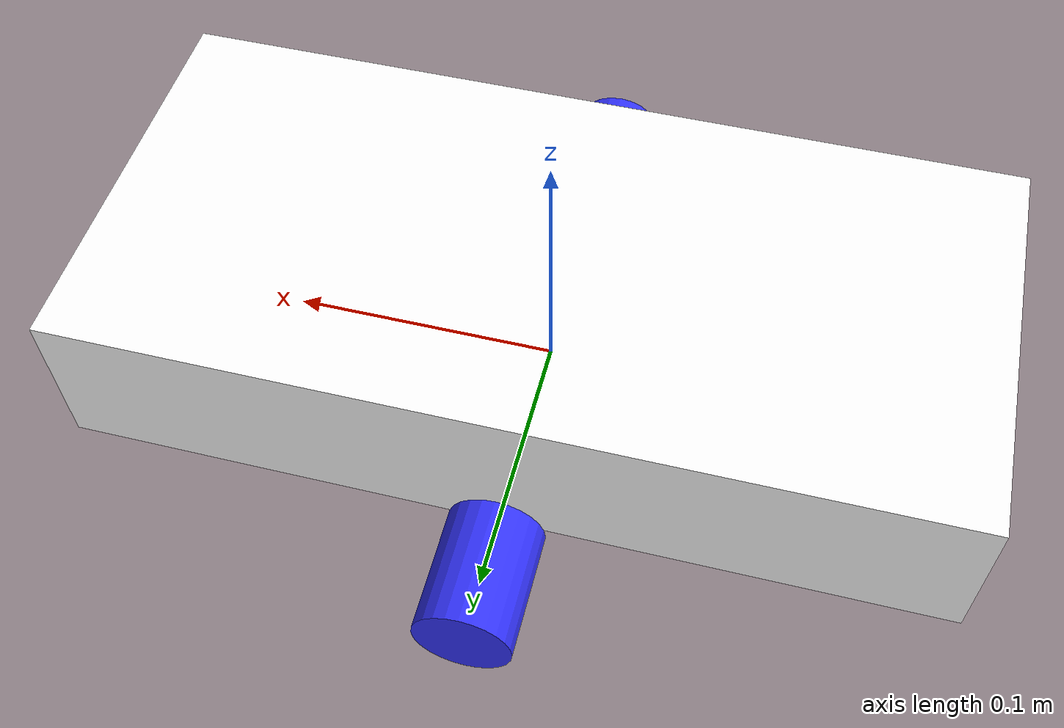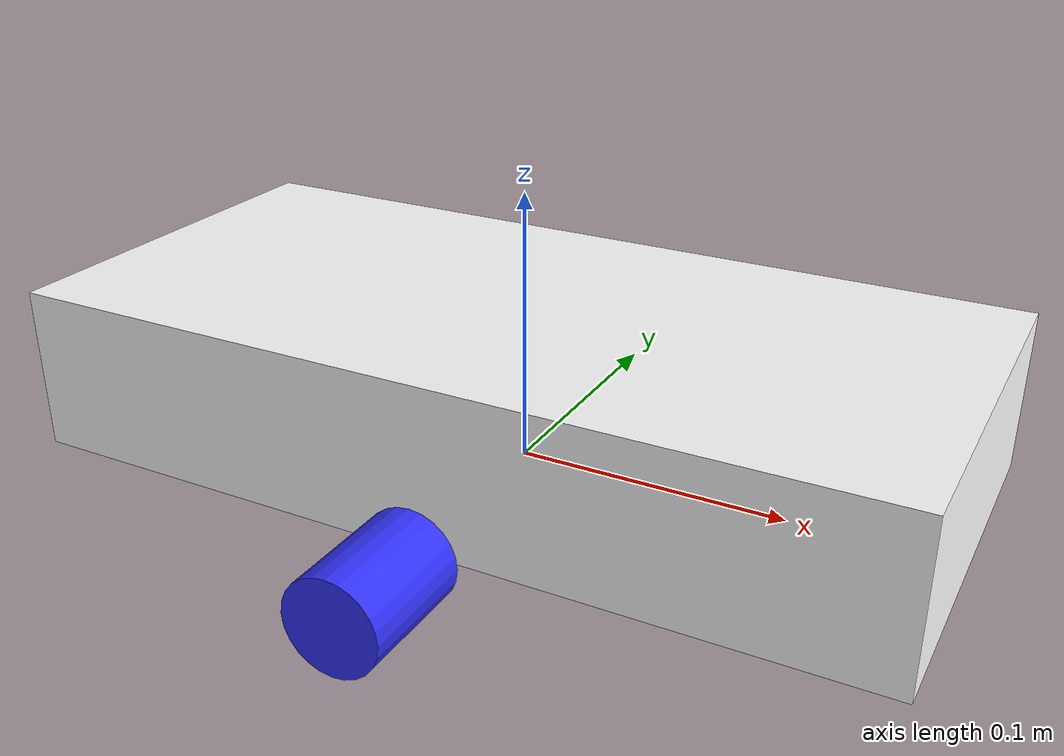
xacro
<?xml version="1.0"?>
<robot xmlns:xacro="https://www.ros.org/wiki/xacro">
    <xacro:include filename="inertial_macros.xacro"/>

    <material name="white">
        <color rgba="1 1 1 1" />
    </material>

    <material name="orange">
        <color rgba="1 0.3 0.1 1"/>
    </material>

    <material name="blue">
        <color rgba="0.2 0.2 1 1"/>
    </material>

    <material name="black">
        <color rgba="0 0 0 1"/>
    </material>

    <link name="base_link">

    </link>

    <joint name="chassis_joint" type="fixed">
        <parent link="base_link"/>
        <child link="chassis"/>
        <origin xyz="0 0 0"/>
    </joint>

    <link name = "chassis">
        <visual>
            <origin xyz="0 0 0.03"/>
            <geometry>
                <box size="0.32 0.15 0.06"/>
            </geometry>
            <material name="white"/>
        </visual>

        <collision>
            <origin xyz="0 0 0.03"/>
            <geometry>
                <box size="0.32 0.15 0.06"/>
            </geometry>
        </collision>

        <xacro:inertial_box mass="0.5" x="0.32" y="0.15" z="0.06">
            <origin xyz="0 0 0.03" rpy="0 0 0"/>
        </xacro:inertial_box>
    </link>

    <joint name="left_wheel_joint" type="continuous">
        <parent link="base_link"/>
        <child link="left_wheel"/>
        <origin xyz="0 0.1 0" rpy="-${pi/2} 0 0"/>
        <axis xyz="0 0 1"/>
    </joint>

    <link name="left_wheel">
        <visual>
            <geometry>
                <cylinder radius="0.0175" length="0.045"/>
            </geometry>
            <material name="blue"/>
        </visual>

        <collision>
            <geometry>
                <cylinder radius="0.0175" length="0.045"/>
            </geometry>
        </collision>

        <xacro:inertial_cylinder mass="0.1" radius="0.0175" length="0.045">
            <origin xyz="0 0 0" rpy="0 0 0"/>
        </xacro:inertial_cylinder>
    </link>

    <joint name="right_wheel_joint" type="continuous">
        <parent link="base_link"/>
        <child link="right_wheel"/>
        <origin xyz="0 -0.1 0" rpy="${pi/2} 0 0"/>
        <axis xyz="0 0 -1"/>
    </joint>

    <link name="right_wheel">
        <visual>
            <geometry>
                <cylinder radius="0.0175" length="0.045"/>
            </geometry>
            <material name="blue"/>
        </visual>

        <collision>
            <geometry>
                <cylinder radius="0.0175" length="0.045"/>
            </geometry>
        </collision>

        <xacro:inertial_cylinder mass="0.1" radius="0.0175" length="0.045">
            <origin xyz="0 0 0" rpy="0 0 0"/>
        </xacro:inertial_cylinder>
    </link>
</robot>
